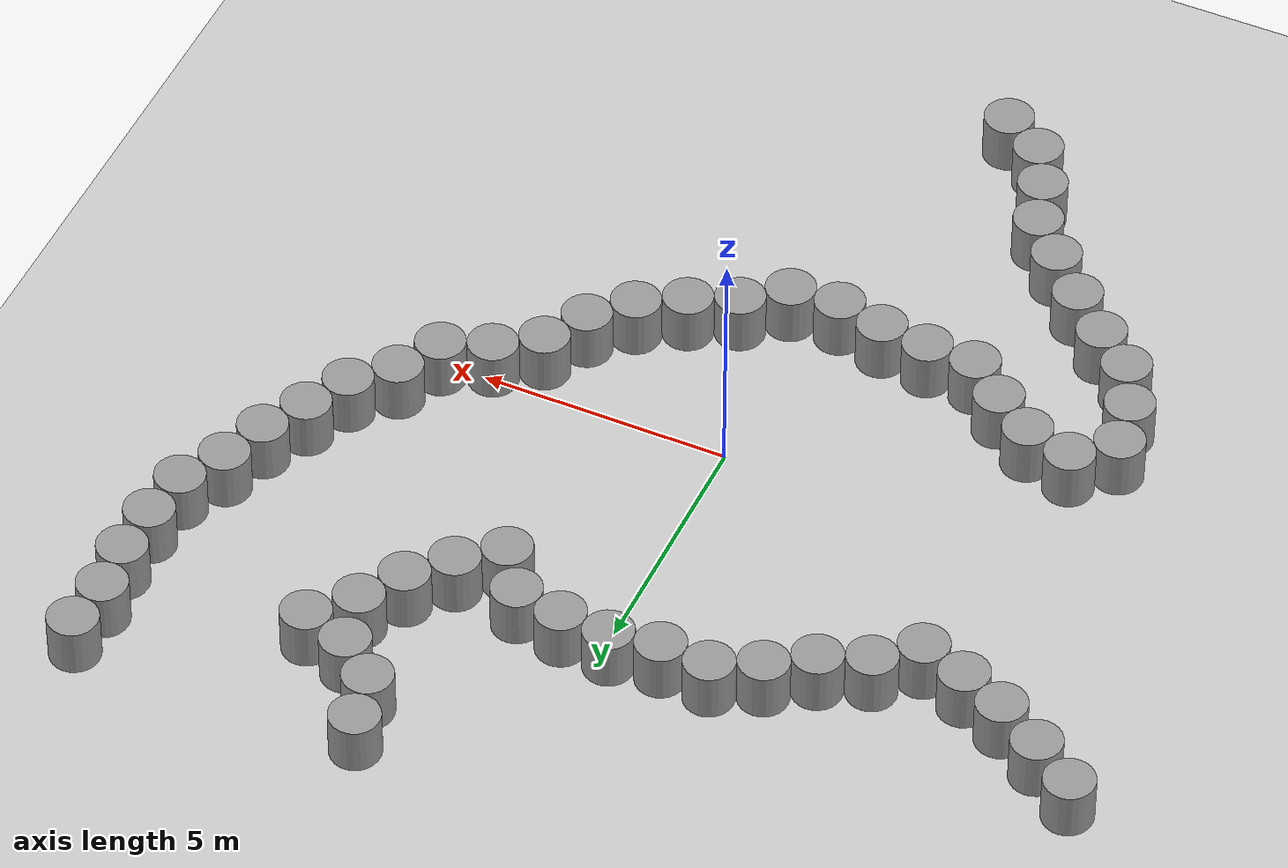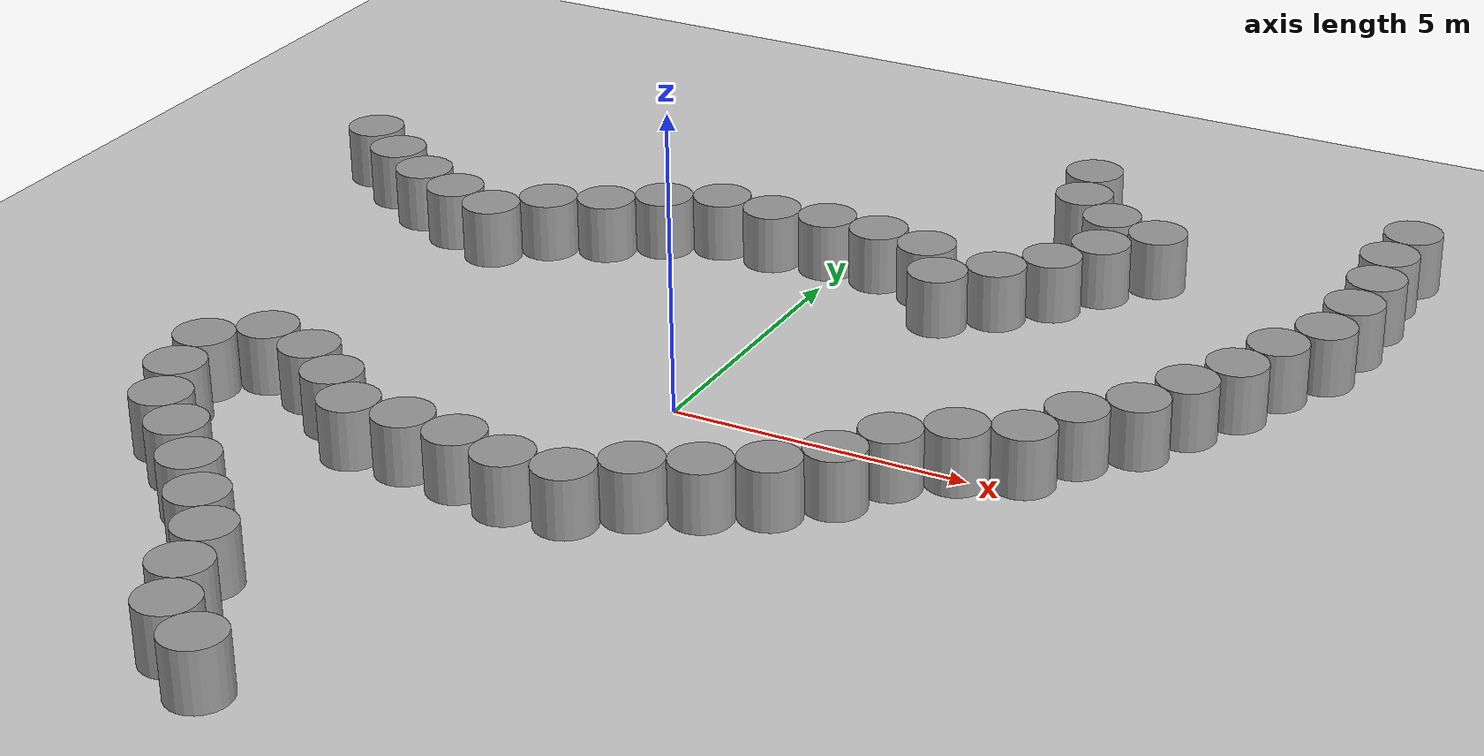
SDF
<sdf version="1.7">
 <world name="default">
  <light name="sun" type="directional">
   <pose>0 0 10 0 -0 0</pose>
   <diffuse>0.8 0.8 0.8 1</diffuse>
   <specular>0.2 0.2 0.2 1</specular>
   <attenuation>
    <range>1000</range>
    <constant>0.9</constant>
    <linear>0.01</linear>
    <quadratic>0.001</quadratic>
   </attenuation>
   <direction>-0.5 0.1 -0.9</direction>
   <spot><inner_angle>0</inner_angle><outer_angle>0</outer_angle><falloff>0</falloff></spot>
  </light>
  <model name="ground_plane">
   <static>1</static>
   <link name="link">
    <collision name="collision">
     <geometry><plane><normal>0 0 1</normal><size>100 100</size></plane></geometry>
     <surface>
      <contact><collide_bitmask>65535</collide_bitmask></contact>
      <friction><ode><mu>100</mu><mu2>50</mu2></ode></friction>
     </surface>
    </collision>
    <visual name="visual">
     <cast_shadows>0</cast_shadows>
     <geometry><plane><normal>0 0 1</normal><size>100 100</size></plane></geometry>
     <material>
      <script><uri>file://media/materials/scripts/gazebo.material</uri><name>Gazebo/Grey</name></script>
     </material>
    </visual>
   </link>
  </model>
  <gravity>0 0 -9.8</gravity>
  <magnetic_field>6e-06 2.3e-05 -4.2e-05</magnetic_field>
  <atmosphere type="adiabatic"/>
  <physics type="ode">
   <max_step_size>0.001</max_step_size>
   <real_time_factor>1</real_time_factor>
   <real_time_update_rate>1000</real_time_update_rate>
  </physics>
  <scene><ambient>0.4 0.4 0.4 1</ambient><background>0.7 0.7 0.7 1</background><shadows>1</shadows></scene>
  <spherical_coordinates>
   <surface_model>EARTH_WGS84</surface_model>
   <latitude_deg>0</latitude_deg>
   <longitude_deg>0</longitude_deg>
   <elevation>0</elevation>
   <heading_deg>0</heading_deg>
  </spherical_coordinates>
  <model name="unit_cylinder">
   <pose>-4.88523 4.31686 0.499991 -0 -0 -0.014173</pose>
   <link name="link">
    <inertial>
     <mass>1</mass>
     <inertia><ixx>0.145833</ixx><ixy>0</ixy><ixz>0</ixz><iyy>0.145833</iyy><iyz>0</iyz><izz>0.125</izz></inertia>
    </inertial>
    <collision name="collision">
     <geometry><cylinder><radius>0.5</radius><length>1</length></cylinder></geometry>
    </collision>
    <visual name="visual">
     <geometry><cylinder><radius>0.5</radius><length>1</length></cylinder></geometry>
     <material>
      <script><name>Gazebo/Grey</name><uri>file://media/materials/scripts/gazebo.material</uri></script>
     </material>
    </visual>
   </link>
  </model>
  <model name="unit_cylinder_0">
   <pose>-3.96455 4.70719 0.499996 -3e-06 2e-06 -0.019339</pose>
   <link name="link">
    <inertial>
     <mass>1</mass>
     <inertia><ixx>0.145833</ixx><ixy>0</ixy><ixz>0</ixz><iyy>0.145833</iyy><iyz>0</iyz><izz>0.125</izz></inertia>
    </inertial>
    <collision name="collision">
     <geometry><cylinder><radius>0.5</radius><length>1</length></cylinder></geometry>
    </collision>
    <visual name="visual">
     <geometry><cylinder><radius>0.5</radius><length>1</length></cylinder></geometry>
     <material>
      <script><name>Gazebo/Grey</name><uri>file://media/materials/scripts/gazebo.material</uri></script>
     </material>
    </visual>
   </link>
  </model>
  <model name="unit_cylinder_1">
   <pose>-5.62469 3.64354 0.499997 3e-06 2e-06 0.000587</pose>
   <link name="link">
    <inertial>
     <mass>1</mass>
     <inertia><ixx>0.145833</ixx><ixy>0</ixy><ixz>0</ixz><iyy>0.145833</iyy><iyz>0</iyz><izz>0.125</izz></inertia>
    </inertial>
    <collision name="collision">
     <geometry><cylinder><radius>0.5</radius><length>1</length></cylinder></geometry>
    </collision>
    <visual name="visual">
     <geometry><cylinder><radius>0.5</radius><length>1</length></cylinder></geometry>
     <material>
      <script><name>Gazebo/Grey</name><uri>file://media/materials/scripts/gazebo.material</uri></script>
     </material>
    </visual>
   </link>
  </model>
  <model name="unit_cylinder_2">
   <pose>-3.13431 5.26469 0.5 0 0 -0.003335</pose>
   <link name="link">
    <inertial>
     <mass>1</mass>
     <inertia><ixx>0.145833</ixx><ixy>0</ixy><ixz>0</ixz><iyy>0.145833</iyy><iyz>0</iyz><izz>0.125</izz></inertia>
    </inertial>
    <collision name="collision">
     <geometry><cylinder><radius>0.5</radius><length>1</length></cylinder></geometry>
    </collision>
    <visual name="visual">
     <geometry><cylinder><radius>0.5</radius><length>1</length></cylinder></geometry>
     <material>
      <script><name>Gazebo/Grey</name><uri>file://media/materials/scripts/gazebo.material</uri></script>
     </material>
    </visual>
   </link>
  </model>
  <model name="unit_cylinder_3">
   <pose>-2.22642 5.68397 0.499998 3e-06 -2e-06 -0.003482</pose>
   <link name="link">
    <inertial>
     <mass>1</mass>
     <inertia><ixx>0.145833</ixx><ixy>0</ixy><ixz>0</ixz><iyy>0.145833</iyy><iyz>0</iyz><izz>0.125</izz></inertia>
    </inertial>
    <collision name="collision">
     <geometry><cylinder><radius>0.5</radius><length>1</length></cylinder></geometry>
    </collision>
    <visual name="visual">
     <geometry><cylinder><radius>0.5</radius><length>1</length></cylinder></geometry>
     <material>
      <script><name>Gazebo/Grey</name><uri>file://media/materials/scripts/gazebo.material</uri></script>
     </material>
    </visual>
   </link>
  </model>
  <model name="unit_cylinder_4">
   <pose>-1.22772 5.628 0.499988 2e-06 1e-06 0.005303</pose>
   <link name="link">
    <inertial>
     <mass>1</mass>
     <inertia><ixx>0.145833</ixx><ixy>0</ixy><ixz>0</ixz><iyy>0.145833</iyy><iyz>0</iyz><izz>0.125</izz></inertia>
    </inertial>
    <collision name="collision">
     <geometry><cylinder><radius>0.5</radius><length>1</length></cylinder></geometry>
    </collision>
    <visual name="visual">
     <geometry><cylinder><radius>0.5</radius><length>1</length></cylinder></geometry>
     <material>
      <script><name>Gazebo/Grey</name><uri>file://media/materials/scripts/gazebo.material</uri></script>
     </material>
    </visual>
   </link>
  </model>
  <model name="unit_cylinder_5">
   <pose>-0.236847 5.76278 0.499942 0 0 -0.015439</pose>
   <link name="link">
    <inertial>
     <mass>1</mass>
     <inertia><ixx>0.145833</ixx><ixy>0</ixy><ixz>0</ixz><iyy>0.145833</iyy><iyz>0</iyz><izz>0.125</izz></inertia>
    </inertial>
    <collision name="collision">
     <geometry><cylinder><radius>0.5</radius><length>1</length></cylinder></geometry>
    </collision>
    <visual name="visual">
     <geometry><cylinder><radius>0.5</radius><length>1</length></cylinder></geometry>
     <material>
      <script><name>Gazebo/Grey</name><uri>file://media/materials/scripts/gazebo.material</uri></script>
     </material>
    </visual>
   </link>
  </model>
  <model name="unit_cylinder_6">
   <pose>0.761152 5.69955 0.499997 3e-06 -6e-06 -0.019067</pose>
   <link name="link">
    <inertial>
     <mass>1</mass>
     <inertia><ixx>0.145833</ixx><ixy>0</ixy><ixz>0</ixz><iyy>0.145833</iyy><iyz>0</iyz><izz>0.125</izz></inertia>
    </inertial>
    <collision name="collision">
     <geometry><cylinder><radius>0.5</radius><length>1</length></cylinder></geometry>
    </collision>
    <visual name="visual">
     <geometry><cylinder><radius>0.5</radius><length>1</length></cylinder></geometry>
     <material>
      <script><name>Gazebo/Grey</name><uri>file://media/materials/scripts/gazebo.material</uri></script>
     </material>
    </visual>
   </link>
  </model>
  <model name="unit_cylinder_7">
   <pose>1.74327 5.51128 0.499993 -3e-06 2e-06 -0.000502</pose>
   <link name="link">
    <inertial>
     <mass>1</mass>
     <inertia><ixx>0.145833</ixx><ixy>0</ixy><ixz>0</ixz><iyy>0.145833</iyy><iyz>0</iyz><izz>0.125</izz></inertia>
    </inertial>
    <collision name="collision">
     <geometry><cylinder><radius>0.5</radius><length>1</length></cylinder></geometry>
    </collision>
    <visual name="visual">
     <geometry><cylinder><radius>0.5</radius><length>1</length></cylinder></geometry>
     <material>
      <script><name>Gazebo/Grey</name><uri>file://media/materials/scripts/gazebo.material</uri></script>
     </material>
    </visual>
   </link>
  </model>
  <model name="unit_cylinder_8">
   <pose>2.34419 4.63769 0.499998 4e-06 3e-06 0.013876</pose>
   <link name="link">
    <inertial>
     <mass>1</mass>
     <inertia><ixx>0.145833</ixx><ixy>0</ixy><ixz>0</ixz><iyy>0.145833</iyy><iyz>0</iyz><izz>0.125</izz></inertia>
    </inertial>
    <collision name="collision">
     <geometry><cylinder><radius>0.5</radius><length>1</length></cylinder></geometry>
    </collision>
    <visual name="visual">
     <geometry><cylinder><radius>0.5</radius><length>1</length></cylinder></geometry>
     <material>
      <script><name>Gazebo/Grey</name><uri>file://media/materials/scripts/gazebo.material</uri></script>
     </material>
    </visual>
   </link>
  </model>
  <model name="unit_cylinder_9">
   <pose>-4.41927 -2.79891 0.499992 -3e-06 -3e-06 0.022525</pose>
   <link name="link">
    <inertial>
     <mass>1</mass>
     <inertia><ixx>0.145833</ixx><ixy>0</ixy><ixz>0</ixz><iyy>0.145833</iyy><iyz>0</iyz><izz>0.125</izz></inertia>
    </inertial>
    <collision name="collision">
     <geometry><cylinder><radius>0.5</radius><length>1</length></cylinder></geometry>
    </collision>
    <visual name="visual">
     <geometry><cylinder><radius>0.5</radius><length>1</length></cylinder></geometry>
     <material>
      <script><name>Gazebo/Grey</name><uri>file://media/materials/scripts/gazebo.material</uri></script>
     </material>
    </visual>
   </link>
  </model>
  <model name="unit_cylinder_10">
   <pose>-3.66203 -3.45209 0.499994 -4e-06 -3e-06 0.006567</pose>
   <link name="link">
    <inertial>
     <mass>1</mass>
     <inertia><ixx>0.145833</ixx><ixy>0</ixy><ixz>0</ixz><iyy>0.145833</iyy><iyz>0</iyz><izz>0.125</izz></inertia>
    </inertial>
    <collision name="collision">
     <geometry><cylinder><radius>0.5</radius><length>1</length></cylinder></geometry>
    </collision>
    <visual name="visual">
     <geometry><cylinder><radius>0.5</radius><length>1</length></cylinder></geometry>
     <material>
      <script><name>Gazebo/Grey</name><uri>file://media/materials/scripts/gazebo.material</uri></script>
     </material>
    </visual>
   </link>
  </model>
  <model name="unit_cylinder_11">
   <pose>-2.66252 -3.48365 0.5 0 -0 -0.006709</pose>
   <link name="link">
    <inertial>
     <mass>1</mass>
     <inertia><ixx>0.145833</ixx><ixy>0</ixy><ixz>0</ixz><iyy>0.145833</iyy><iyz>0</iyz><izz>0.125</izz></inertia>
    </inertial>
    <collision name="collision">
     <geometry><cylinder><radius>0.5</radius><length>1</length></cylinder></geometry>
    </collision>
    <visual name="visual">
     <geometry><cylinder><radius>0.5</radius><length>1</length></cylinder></geometry>
     <material>
      <script><name>Gazebo/Grey</name><uri>file://media/materials/scripts/gazebo.material</uri></script>
     </material>
    </visual>
   </link>
  </model>
  <model name="unit_cylinder_12">
   <pose>-1.66973 -3.60363 0.499997 4e-06 -2e-06 0.007855</pose>
   <link name="link">
    <inertial>
     <mass>1</mass>
     <inertia><ixx>0.145833</ixx><ixy>0</ixy><ixz>0</ixz><iyy>0.145833</iyy><iyz>0</iyz><izz>0.125</izz></inertia>
    </inertial>
    <collision name="collision">
     <geometry><cylinder><radius>0.5</radius><length>1</length></cylinder></geometry>
    </collision>
    <visual name="visual">
     <geometry><cylinder><radius>0.5</radius><length>1</length></cylinder></geometry>
     <material>
      <script><name>Gazebo/Grey</name><uri>file://media/materials/scripts/gazebo.material</uri></script>
     </material>
    </visual>
   </link>
  </model>
  <model name="unit_cylinder_13">
   <pose>-0.695289 -3.82938 0.499993 -3e-06 2e-06 0.010551</pose>
   <link name="link">
    <inertial>
     <mass>1</mass>
     <inertia><ixx>0.145833</ixx><ixy>0</ixy><ixz>0</ixz><iyy>0.145833</iyy><iyz>0</iyz><izz>0.125</izz></inertia>
    </inertial>
    <collision name="collision">
     <geometry><cylinder><radius>0.5</radius><length>1</length></cylinder></geometry>
    </collision>
    <visual name="visual">
     <geometry><cylinder><radius>0.5</radius><length>1</length></cylinder></geometry>
     <material>
      <script><name>Gazebo/Grey</name><uri>file://media/materials/scripts/gazebo.material</uri></script>
     </material>
    </visual>
   </link>
  </model>
  <model name="unit_cylinder_14">
   <pose>0.303372 -3.77377 0.499993 -3e-06 3e-06 0.002691</pose>
   <link name="link">
    <inertial>
     <mass>1</mass>
     <inertia><ixx>0.145833</ixx><ixy>0</ixy><ixz>0</ixz><iyy>0.145833</iyy><iyz>0</iyz><izz>0.125</izz></inertia>
    </inertial>
    <collision name="collision">
     <geometry><cylinder><radius>0.5</radius><length>1</length></cylinder></geometry>
    </collision>
    <visual name="visual">
     <geometry><cylinder><radius>0.5</radius><length>1</length></cylinder></geometry>
     <material>
      <script><name>Gazebo/Grey</name><uri>file://media/materials/scripts/gazebo.material</uri></script>
     </material>
    </visual>
   </link>
  </model>
  <model name="unit_cylinder_15">
   <pose>1.08261 -3.14695 0.499997 4e-06 3e-06 0.004034</pose>
   <link name="link">
    <inertial>
     <mass>1</mass>
     <inertia><ixx>0.145833</ixx><ixy>0</ixy><ixz>0</ixz><iyy>0.145833</iyy><iyz>0</iyz><izz>0.125</izz></inertia>
    </inertial>
    <collision name="collision">
     <geometry><cylinder><radius>0.5</radius><length>1</length></cylinder></geometry>
    </collision>
    <visual name="visual">
     <geometry><cylinder><radius>0.5</radius><length>1</length></cylinder></geometry>
     <material>
      <script><name>Gazebo/Grey</name><uri>file://media/materials/scripts/gazebo.material</uri></script>
     </material>
    </visual>
   </link>
  </model>
  <model name="unit_cylinder_16">
   <pose>1.99143 -2.72719 0.5 0 0 -0.038004</pose>
   <link name="link">
    <inertial>
     <mass>1</mass>
     <inertia><ixx>0.145833</ixx><ixy>0</ixy><ixz>0</ixz><iyy>0.145833</iyy><iyz>0</iyz><izz>0.125</izz></inertia>
    </inertial>
    <collision name="collision">
     <geometry><cylinder><radius>0.5</radius><length>1</length></cylinder></geometry>
    </collision>
    <visual name="visual">
     <geometry><cylinder><radius>0.5</radius><length>1</length></cylinder></geometry>
     <material>
      <script><name>Gazebo/Grey</name><uri>file://media/materials/scripts/gazebo.material</uri></script>
     </material>
    </visual>
   </link>
  </model>
  <model name="unit_cylinder_17">
   <pose>2.85703 -2.22312 0.499991 -0 -0 -0.003557</pose>
   <link name="link">
    <inertial>
     <mass>1</mass>
     <inertia><ixx>0.145833</ixx><ixy>0</ixy><ixz>0</ixz><iyy>0.145833</iyy><iyz>0</iyz><izz>0.125</izz></inertia>
    </inertial>
    <collision name="collision">
     <geometry><cylinder><radius>0.5</radius><length>1</length></cylinder></geometry>
    </collision>
    <visual name="visual">
     <geometry><cylinder><radius>0.5</radius><length>1</length></cylinder></geometry>
     <material>
      <script><name>Gazebo/Grey</name><uri>file://media/materials/scripts/gazebo.material</uri></script>
     </material>
    </visual>
   </link>
  </model>
  <model name="unit_cylinder_18">
   <pose>-5.24293 -2.23182 0.5 0 -0 0.018738</pose>
   <link name="link">
    <inertial>
     <mass>1</mass>
     <inertia><ixx>0.145833</ixx><ixy>0</ixy><ixz>0</ixz><iyy>0.145833</iyy><iyz>0</iyz><izz>0.125</izz></inertia>
    </inertial>
    <collision name="collision">
     <geometry><cylinder><radius>0.5</radius><length>1</length></cylinder></geometry>
    </collision>
    <visual name="visual">
     <geometry><cylinder><radius>0.5</radius><length>1</length></cylinder></geometry>
     <material>
      <script><name>Gazebo/Grey</name><uri>file://media/materials/scripts/gazebo.material</uri></script>
     </material>
    </visual>
   </link>
  </model>
  <model name="unit_cylinder_19">
   <pose>3.56408 -1.5145 0.499992 -3e-06 -4e-06 -0.014137</pose>
   <link name="link">
    <inertial>
     <mass>1</mass>
     <inertia><ixx>0.145833</ixx><ixy>0</ixy><ixz>0</ixz><iyy>0.145833</iyy><iyz>0</iyz><izz>0.125</izz></inertia>
    </inertial>
    <collision name="collision">
     <geometry><cylinder><radius>0.5</radius><length>1</length></cylinder></geometry>
    </collision>
    <visual name="visual">
     <geometry><cylinder><radius>0.5</radius><length>1</length></cylinder></geometry>
     <material>
      <script><name>Gazebo/Grey</name><uri>file://media/materials/scripts/gazebo.material</uri></script>
     </material>
    </visual>
   </link>
  </model>
  <model name="unit_cylinder_20">
   <pose>3.12043 5.26812 0.499997 3e-06 -3e-06 -0.002531</pose>
   <link name="link">
    <inertial>
     <mass>1</mass>
     <inertia><ixx>0.145833</ixx><ixy>0</ixy><ixz>0</ixz><iyy>0.145833</iyy><iyz>0</iyz><izz>0.125</izz></inertia>
    </inertial>
    <collision name="collision">
     <geometry><cylinder><radius>0.5</radius><length>1</length></cylinder></geometry>
    </collision>
    <visual name="visual">
     <geometry><cylinder><radius>0.5</radius><length>1</length></cylinder></geometry>
     <material>
      <script><name>Gazebo/Grey</name><uri>file://media/materials/scripts/gazebo.material</uri></script>
     </material>
    </visual>
   </link>
  </model>
  <model name="unit_cylinder_21">
   <pose>3.80101 6.00102 0.499994 -3e-06 -2e-06 0.016279</pose>
   <link name="link">
    <inertial>
     <mass>1</mass>
     <inertia><ixx>0.145833</ixx><ixy>0</ixy><ixz>0</ixz><iyy>0.145833</iyy><iyz>0</iyz><izz>0.125</izz></inertia>
    </inertial>
    <collision name="collision">
     <geometry><cylinder><radius>0.5</radius><length>1</length></cylinder></geometry>
    </collision>
    <visual name="visual">
     <geometry><cylinder><radius>0.5</radius><length>1</length></cylinder></geometry>
     <material>
      <script><name>Gazebo/Grey</name><uri>file://media/materials/scripts/gazebo.material</uri></script>
     </material>
    </visual>
   </link>
  </model>
  <model name="unit_cylinder_22">
   <pose>4.32045 6.85553 0.5 0 -0 0.00669</pose>
   <link name="link">
    <inertial>
     <mass>1</mass>
     <inertia><ixx>0.145833</ixx><ixy>0</ixy><ixz>0</ixz><iyy>0.145833</iyy><iyz>0</iyz><izz>0.125</izz></inertia>
    </inertial>
    <collision name="collision">
     <geometry><cylinder><radius>0.5</radius><length>1</length></cylinder></geometry>
    </collision>
    <visual name="visual">
     <geometry><cylinder><radius>0.5</radius><length>1</length></cylinder></geometry>
     <material>
      <script><name>Gazebo/Grey</name><uri>file://media/materials/scripts/gazebo.material</uri></script>
     </material>
    </visual>
   </link>
  </model>
  <model name="unit_cylinder_23">
   <pose>4.04269 -0.635459 0.499997 3e-06 2e-06 -0.096247</pose>
   <link name="link">
    <inertial>
     <mass>1</mass>
     <inertia><ixx>0.145833</ixx><ixy>0</ixy><ixz>0</ixz><iyy>0.145833</iyy><iyz>0</iyz><izz>0.125</izz></inertia>
    </inertial>
    <collision name="collision">
     <geometry><cylinder><radius>0.5</radius><length>1</length></cylinder></geometry>
    </collision>
    <visual name="visual">
     <geometry><cylinder><radius>0.5</radius><length>1</length></cylinder></geometry>
     <material>
      <script><name>Gazebo/Grey</name><uri>file://media/materials/scripts/gazebo.material</uri></script>
     </material>
    </visual>
   </link>
  </model>
  <model name="unit_cylinder_24">
   <pose>4.85439 -0.048985 0.499997 3e-06 2e-06 -0.010776</pose>
   <link name="link">
    <inertial>
     <mass>1</mass>
     <inertia><ixx>0.145833</ixx><ixy>0</ixy><ixz>0</ixz><iyy>0.145833</iyy><iyz>0</iyz><izz>0.125</izz></inertia>
    </inertial>
    <collision name="collision">
     <geometry><cylinder><radius>0.5</radius><length>1</length></cylinder></geometry>
    </collision>
    <visual name="visual">
     <geometry><cylinder><radius>0.5</radius><length>1</length></cylinder></geometry>
     <material>
      <script><name>Gazebo/Grey</name><uri>file://media/materials/scripts/gazebo.material</uri></script>
     </material>
    </visual>
   </link>
  </model>
  <model name="unit_cylinder_25">
   <pose>5.77753 0.339701 0.499991 0 0 -0.045357</pose>
   <link name="link">
    <inertial>
     <mass>1</mass>
     <inertia><ixx>0.145833</ixx><ixy>0</ixy><ixz>0</ixz><iyy>0.145833</iyy><iyz>0</iyz><izz>0.125</izz></inertia>
    </inertial>
    <collision name="collision">
     <geometry><cylinder><radius>0.5</radius><length>1</length></cylinder></geometry>
    </collision>
    <visual name="visual">
     <geometry><cylinder><radius>0.5</radius><length>1</length></cylinder></geometry>
     <material>
      <script><name>Gazebo/Grey</name><uri>file://media/materials/scripts/gazebo.material</uri></script>
     </material>
    </visual>
   </link>
  </model>
  <model name="unit_cylinder_26">
   <pose>6.24251 1.22842 0.499993 -3e-06 2e-06 0.074308</pose>
   <link name="link">
    <inertial>
     <mass>1</mass>
     <inertia><ixx>0.145833</ixx><ixy>0</ixy><ixz>0</ixz><iyy>0.145833</iyy><iyz>0</iyz><izz>0.125</izz></inertia>
    </inertial>
    <collision name="collision">
     <geometry><cylinder><radius>0.5</radius><length>1</length></cylinder></geometry>
    </collision>
    <visual name="visual">
     <geometry><cylinder><radius>0.5</radius><length>1</length></cylinder></geometry>
     <material>
      <script><name>Gazebo/Grey</name><uri>file://media/materials/scripts/gazebo.material</uri></script>
     </material>
    </visual>
   </link>
  </model>
  <model name="unit_cylinder_27">
   <pose>6.95342 1.93176 0.499999 -1e-06 -0 0.01408</pose>
   <link name="link">
    <inertial>
     <mass>1</mass>
     <inertia><ixx>0.145833</ixx><ixy>0</ixy><ixz>0</ixz><iyy>0.145833</iyy><iyz>0</iyz><izz>0.125</izz></inertia>
    </inertial>
    <collision name="collision">
     <geometry><cylinder><radius>0.5</radius><length>1</length></cylinder></geometry>
    </collision>
    <visual name="visual">
     <geometry><cylinder><radius>0.5</radius><length>1</length></cylinder></geometry>
     <material>
      <script><name>Gazebo/Grey</name><uri>file://media/materials/scripts/gazebo.material</uri></script>
     </material>
    </visual>
   </link>
  </model>
  <model name="unit_cylinder_28">
   <pose>7.39506 2.82895 0.5 0 0 -0.055246</pose>
   <link name="link">
    <inertial>
     <mass>1</mass>
     <inertia><ixx>0.145833</ixx><ixy>0</ixy><ixz>0</ixz><iyy>0.145833</iyy><iyz>0</iyz><izz>0.125</izz></inertia>
    </inertial>
    <collision name="collision">
     <geometry><cylinder><radius>0.5</radius><length>1</length></cylinder></geometry>
    </collision>
    <visual name="visual">
     <geometry><cylinder><radius>0.5</radius><length>1</length></cylinder></geometry>
     <material>
      <script><name>Gazebo/Grey</name><uri>file://media/materials/scripts/gazebo.material</uri></script>
     </material>
    </visual>
   </link>
  </model>
  <model name="unit_cylinder_29">
   <pose>5.02827 7.63205 0.499997 3e-06 2e-06 0.020177</pose>
   <link name="link">
    <inertial>
     <mass>1</mass>
     <inertia><ixx>0.145833</ixx><ixy>0</ixy><ixz>0</ixz><iyy>0.145833</iyy><iyz>0</iyz><izz>0.125</izz></inertia>
    </inertial>
    <collision name="collision">
     <geometry><cylinder><radius>0.5</radius><length>1</length></cylinder></geometry>
    </collision>
    <visual name="visual">
     <geometry><cylinder><radius>0.5</radius><length>1</length></cylinder></geometry>
     <material>
      <script><name>Gazebo/Grey</name><uri>file://media/materials/scripts/gazebo.material</uri></script>
     </material>
    </visual>
   </link>
  </model>
  <model name="unit_cylinder_30">
   <pose>7.87509 3.7062 0.5 0 -0 0.043578</pose>
   <link name="link">
    <inertial>
     <mass>1</mass>
     <inertia><ixx>0.145833</ixx><ixy>0</ixy><ixz>0</ixz><iyy>0.145833</iyy><iyz>0</iyz><izz>0.125</izz></inertia>
    </inertial>
    <collision name="collision">
     <geometry><cylinder><radius>0.5</radius><length>1</length></cylinder></geometry>
    </collision>
    <visual name="visual">
     <geometry><cylinder><radius>0.5</radius><length>1</length></cylinder></geometry>
     <material>
      <script><name>Gazebo/Grey</name><uri>file://media/materials/scripts/gazebo.material</uri></script>
     </material>
    </visual>
   </link>
  </model>
  <model name="unit_cylinder_31">
   <pose>8.20358 4.65072 0.499996 4e-06 3e-06 0.022974</pose>
   <link name="link">
    <inertial>
     <mass>1</mass>
     <inertia><ixx>0.145833</ixx><ixy>0</ixy><ixz>0</ixz><iyy>0.145833</iyy><iyz>0</iyz><izz>0.125</izz></inertia>
    </inertial>
    <collision name="collision">
     <geometry><cylinder><radius>0.5</radius><length>1</length></cylinder></geometry>
    </collision>
    <visual name="visual">
     <geometry><cylinder><radius>0.5</radius><length>1</length></cylinder></geometry>
     <material>
      <script><name>Gazebo/Grey</name><uri>file://media/materials/scripts/gazebo.material</uri></script>
     </material>
    </visual>
   </link>
  </model>
  <model name="unit_cylinder_32">
   <pose>4.07546 7.93924 0.5 0 -0 0.036909</pose>
   <link name="link">
    <inertial>
     <mass>1</mass>
     <inertia><ixx>0.145833</ixx><ixy>0</ixy><ixz>0</ixz><iyy>0.145833</iyy><iyz>0</iyz><izz>0.125</izz></inertia>
    </inertial>
    <collision name="collision">
     <geometry><cylinder><radius>0.5</radius><length>1</length></cylinder></geometry>
    </collision>
    <visual name="visual">
     <geometry><cylinder><radius>0.5</radius><length>1</length></cylinder></geometry>
     <material>
      <script><name>Gazebo/Grey</name><uri>file://media/materials/scripts/gazebo.material</uri></script>
     </material>
    </visual>
   </link>
  </model>
  <model name="unit_cylinder_33">
   <pose>8.69174 5.53135 0.500438 0.000414 0.000779 0.010944</pose>
   <link name="link">
    <inertial>
     <mass>1</mass>
     <inertia><ixx>0.145833</ixx><ixy>0</ixy><ixz>0</ixz><iyy>0.145833</iyy><iyz>0</iyz><izz>0.125</izz></inertia>
    </inertial>
    <collision name="collision">
     <geometry><cylinder><radius>0.5</radius><length>1</length></cylinder></geometry>
    </collision>
    <visual name="visual">
     <geometry><cylinder><radius>0.5</radius><length>1</length></cylinder></geometry>
     <material>
      <script><name>Gazebo/Grey</name><uri>file://media/materials/scripts/gazebo.material</uri></script>
     </material>
    </visual>
   </link>
  </model>
  <model name="unit_cylinder_34">
   <pose>8.82112 6.5438 0.502966 -0.005752 -0.001528 0.299621</pose>
   <link name="link">
    <inertial>
     <mass>1</mass>
     <inertia><ixx>0.145833</ixx><ixy>0</ixy><ixz>0</ixz><iyy>0.145833</iyy><iyz>0</iyz><izz>0.125</izz></inertia>
    </inertial>
    <collision name="collision">
     <geometry><cylinder><radius>0.5</radius><length>1</length></cylinder></geometry>
    </collision>
    <visual name="visual">
     <geometry><cylinder><radius>0.5</radius><length>1</length></cylinder></geometry>
     <material>
      <script><name>Gazebo/Grey</name><uri>file://media/materials/scripts/gazebo.material</uri></script>
     </material>
    </visual>
   </link>
  </model>
  <model name="unit_cylinder_35">
   <pose>8.8547 7.57575 0.499998 3e-06 -2e-06 -0.011026</pose>
   <link name="link">
    <inertial>
     <mass>1</mass>
     <inertia><ixx>0.145833</ixx><ixy>0</ixy><ixz>0</ixz><iyy>0.145833</iyy><iyz>0</iyz><izz>0.125</izz></inertia>
    </inertial>
    <collision name="collision">
     <geometry><cylinder><radius>0.5</radius><length>1</length></cylinder></geometry>
    </collision>
    <visual name="visual">
     <geometry><cylinder><radius>0.5</radius><length>1</length></cylinder></geometry>
     <material>
      <script><name>Gazebo/Grey</name><uri>file://media/materials/scripts/gazebo.material</uri></script>
     </material>
    </visual>
   </link>
  </model>
  <model name="unit_cylinder_36">
   <pose>8.75882 8.57119 0.499991 0 -0 0.004839</pose>
   <link name="link">
    <inertial>
     <mass>1</mass>
     <inertia><ixx>0.145833</ixx><ixy>0</ixy><ixz>0</ixz><iyy>0.145833</iyy><iyz>0</iyz><izz>0.125</izz></inertia>
    </inertial>
    <collision name="collision">
     <geometry><cylinder><radius>0.5</radius><length>1</length></cylinder></geometry>
    </collision>
    <visual name="visual">
     <geometry><cylinder><radius>0.5</radius><length>1</length></cylinder></geometry>
     <material>
      <script><name>Gazebo/Grey</name><uri>file://media/materials/scripts/gazebo.material</uri></script>
     </material>
    </visual>
   </link>
  </model>
  <model name="unit_cylinder_37">
   <pose>8.84994 9.56705 0.499996 -4e-06 2e-06 0.005227</pose>
   <link name="link">
    <inertial>
     <mass>1</mass>
     <inertia><ixx>0.145833</ixx><ixy>0</ixy><ixz>0</ixz><iyy>0.145833</iyy><iyz>0</iyz><izz>0.125</izz></inertia>
    </inertial>
    <collision name="collision">
     <geometry><cylinder><radius>0.5</radius><length>1</length></cylinder></geometry>
    </collision>
    <visual name="visual">
     <geometry><cylinder><radius>0.5</radius><length>1</length></cylinder></geometry>
     <material>
      <script><name>Gazebo/Grey</name><uri>file://media/materials/scripts/gazebo.material</uri></script>
     </material>
    </visual>
   </link>
  </model>
  <model name="unit_cylinder_38">
   <pose>3.30375 8.58356 0.499997 3e-06 3e-06 -0.057543</pose>
   <link name="link">
    <inertial>
     <mass>1</mass>
     <inertia><ixx>0.145833</ixx><ixy>0</ixy><ixz>0</ixz><iyy>0.145833</iyy><iyz>0</iyz><izz>0.125</izz></inertia>
    </inertial>
    <collision name="collision">
     <geometry><cylinder><radius>0.5</radius><length>1</length></cylinder></geometry>
    </collision>
    <visual name="visual">
     <geometry><cylinder><radius>0.5</radius><length>1</length></cylinder></geometry>
     <material>
      <script><name>Gazebo/Grey</name><uri>file://media/materials/scripts/gazebo.material</uri></script>
     </material>
    </visual>
   </link>
  </model>
  <model name="unit_cylinder_39">
   <pose>3.09132 9.56789 0.502316 0.001477 -0.004404 -0.129825</pose>
   <link name="link">
    <inertial>
     <mass>1</mass>
     <inertia><ixx>0.145833</ixx><ixy>0</ixy><ixz>0</ixz><iyy>0.145833</iyy><iyz>0</iyz><izz>0.125</izz></inertia>
    </inertial>
    <collision name="collision">
     <geometry><cylinder><radius>0.5</radius><length>1</length></cylinder></geometry>
    </collision>
    <visual name="visual">
     <geometry><cylinder><radius>0.5</radius><length>1</length></cylinder></geometry>
     <material>
      <script><name>Gazebo/Grey</name><uri>file://media/materials/scripts/gazebo.material</uri></script>
     </material>
    </visual>
   </link>
  </model>
  <model name="unit_cylinder_40">
   <pose>-6.5666 3.97945 0.499993 -3e-06 -2e-06 -0.001415</pose>
   <link name="link">
    <inertial>
     <mass>1</mass>
     <inertia><ixx>0.145833</ixx><ixy>0</ixy><ixz>0</ixz><iyy>0.145833</iyy><iyz>0</iyz><izz>0.125</izz></inertia>
    </inertial>
    <collision name="collision">
     <geometry><cylinder><radius>0.5</radius><length>1</length></cylinder></geometry>
    </collision>
    <visual name="visual">
     <geometry><cylinder><radius>0.5</radius><length>1</length></cylinder></geometry>
     <material>
      <script><name>Gazebo/Grey</name><uri>file://media/materials/scripts/gazebo.material</uri></script>
     </material>
    </visual>
   </link>
  </model>
  <model name="unit_cylinder_41">
   <pose>-7.47819 4.3906 0.499998 3e-06 -2e-06 0.001421</pose>
   <link name="link">
    <inertial>
     <mass>1</mass>
     <inertia><ixx>0.145833</ixx><ixy>0</ixy><ixz>0</ixz><iyy>0.145833</iyy><iyz>0</iyz><izz>0.125</izz></inertia>
    </inertial>
    <collision name="collision">
     <geometry><cylinder><radius>0.5</radius><length>1</length></cylinder></geometry>
    </collision>
    <visual name="visual">
     <geometry><cylinder><radius>0.5</radius><length>1</length></cylinder></geometry>
     <material>
      <script><name>Gazebo/Grey</name><uri>file://media/materials/scripts/gazebo.material</uri></script>
     </material>
    </visual>
   </link>
  </model>
  <model name="unit_cylinder_42">
   <pose>-8.40516 4.96655 0.499992 -3e-06 3e-06 0</pose>
   <link name="link">
    <inertial>
     <mass>1</mass>
     <inertia><ixx>0.145833</ixx><ixy>0</ixy><ixz>0</ixz><iyy>0.145833</iyy><iyz>0</iyz><izz>0.125</izz></inertia>
    </inertial>
    <collision name="collision">
     <geometry><cylinder><radius>0.5</radius><length>1</length></cylinder></geometry>
    </collision>
    <visual name="visual">
     <geometry><cylinder><radius>0.5</radius><length>1</length></cylinder></geometry>
     <material>
      <script><name>Gazebo/Grey</name><uri>file://media/materials/scripts/gazebo.material</uri></script>
     </material>
    </visual>
   </link>
  </model>
  <model name="unit_cylinder_43">
   <pose>-9.30017 5.5931 0.499992 -3e-06 3e-06 0</pose>
   <link name="link">
    <inertial>
     <mass>1</mass>
     <inertia><ixx>0.145833</ixx><ixy>0</ixy><ixz>0</ixz><iyy>0.145833</iyy><iyz>0</iyz><izz>0.125</izz></inertia>
    </inertial>
    <collision name="collision">
     <geometry><cylinder><radius>0.5</radius><length>1</length></cylinder></geometry>
    </collision>
    <visual name="visual">
     <geometry><cylinder><radius>0.5</radius><length>1</length></cylinder></geometry>
     <material>
      <script><name>Gazebo/Grey</name><uri>file://media/materials/scripts/gazebo.material</uri></script>
     </material>
    </visual>
   </link>
  </model>
  <model name="unit_cylinder_44">
   <pose>-6.20796 -1.96965 0.5 0 -0 -0.005317</pose>
   <link name="link">
    <inertial>
     <mass>1</mass>
     <inertia><ixx>0.145833</ixx><ixy>0</ixy><ixz>0</ixz><iyy>0.145833</iyy><iyz>0</iyz><izz>0.125</izz></inertia>
    </inertial>
    <collision name="collision">
     <geometry><cylinder><radius>0.5</radius><length>1</length></cylinder></geometry>
    </collision>
    <visual name="visual">
     <geometry><cylinder><radius>0.5</radius><length>1</length></cylinder></geometry>
     <material>
      <script><name>Gazebo/Grey</name><uri>file://media/materials/scripts/gazebo.material</uri></script>
     </material>
    </visual>
   </link>
  </model>
  <model name="unit_cylinder_45">
   <pose>-6.94281 -2.64791 0.5 1e-06 1e-06 -0.000429</pose>
   <link name="link">
    <inertial>
     <mass>1</mass>
     <inertia><ixx>0.145833</ixx><ixy>0</ixy><ixz>0</ixz><iyy>0.145833</iyy><iyz>0</iyz><izz>0.125</izz></inertia>
    </inertial>
    <collision name="collision">
     <geometry><cylinder><radius>0.5</radius><length>1</length></cylinder></geometry>
    </collision>
    <visual name="visual">
     <geometry><cylinder><radius>0.5</radius><length>1</length></cylinder></geometry>
     <material>
      <script><name>Gazebo/Grey</name><uri>file://media/materials/scripts/gazebo.material</uri></script>
     </material>
    </visual>
   </link>
  </model>
  <model name="unit_cylinder_46">
   <pose>-6.7491 -3.62898 0.499991 -1e-06 -1e-06 -0.000792</pose>
   <link name="link">
    <inertial>
     <mass>1</mass>
     <inertia><ixx>0.145833</ixx><ixy>0</ixy><ixz>0</ixz><iyy>0.145833</iyy><iyz>0</iyz><izz>0.125</izz></inertia>
    </inertial>
    <collision name="collision">
     <geometry><cylinder><radius>0.5</radius><length>1</length></cylinder></geometry>
    </collision>
    <visual name="visual">
     <geometry><cylinder><radius>0.5</radius><length>1</length></cylinder></geometry>
     <material>
      <script><name>Gazebo/Grey</name><uri>file://media/materials/scripts/gazebo.material</uri></script>
     </material>
    </visual>
   </link>
  </model>
  <model name="unit_cylinder_47">
   <pose>-6.3089 -4.55952 0.499996 -4e-06 -3e-06 -0.000134</pose>
   <link name="link">
    <inertial>
     <mass>1</mass>
     <inertia><ixx>0.145833</ixx><ixy>0</ixy><ixz>0</ixz><iyy>0.145833</iyy><iyz>0</iyz><izz>0.125</izz></inertia>
    </inertial>
    <collision name="collision">
     <geometry><cylinder><radius>0.5</radius><length>1</length></cylinder></geometry>
    </collision>
    <visual name="visual">
     <geometry><cylinder><radius>0.5</radius><length>1</length></cylinder></geometry>
     <material>
      <script><name>Gazebo/Grey</name><uri>file://media/materials/scripts/gazebo.material</uri></script>
     </material>
    </visual>
   </link>
  </model>
  <model name="unit_cylinder_48">
   <pose>-5.5369 -5.19518 0.499992 -2e-06 -2e-06 -0.000112</pose>
   <link name="link">
    <inertial>
     <mass>1</mass>
     <inertia><ixx>0.145833</ixx><ixy>0</ixy><ixz>0</ixz><iyy>0.145833</iyy><iyz>0</iyz><izz>0.125</izz></inertia>
    </inertial>
    <collision name="collision">
     <geometry><cylinder><radius>0.5</radius><length>1</length></cylinder></geometry>
    </collision>
    <visual name="visual">
     <geometry><cylinder><radius>0.5</radius><length>1</length></cylinder></geometry>
     <material>
      <script><name>Gazebo/Grey</name><uri>file://media/materials/scripts/gazebo.material</uri></script>
     </material>
    </visual>
   </link>
  </model>
  <model name="unit_cylinder_49">
   <pose>-4.7357 -5.95229 0.499992 -3e-06 4e-06 0</pose>
   <link name="link">
    <inertial>
     <mass>1</mass>
     <inertia><ixx>0.145833</ixx><ixy>0</ixy><ixz>0</ixz><iyy>0.145833</iyy><iyz>0</iyz><izz>0.125</izz></inertia>
    </inertial>
    <collision name="collision">
     <geometry><cylinder><radius>0.5</radius><length>1</length></cylinder></geometry>
    </collision>
    <visual name="visual">
     <geometry><cylinder><radius>0.5</radius><length>1</length></cylinder></geometry>
     <material>
      <script><name>Gazebo/Grey</name><uri>file://media/materials/scripts/gazebo.material</uri></script>
     </material>
    </visual>
   </link>
  </model>
  <model name="unit_cylinder_50">
   <pose>-3.96304 -6.77079 0.499994 5e-06 1e-06 -0.002703</pose>
   <link name="link">
    <inertial>
     <mass>1</mass>
     <inertia><ixx>0.145833</ixx><ixy>0</ixy><ixz>0</ixz><iyy>0.145833</iyy><iyz>0</iyz><izz>0.125</izz></inertia>
    </inertial>
    <collision name="collision">
     <geometry><cylinder><radius>0.5</radius><length>1</length></cylinder></geometry>
    </collision>
    <visual name="visual">
     <geometry><cylinder><radius>0.5</radius><length>1</length></cylinder></geometry>
     <material>
      <script><name>Gazebo/Grey</name><uri>file://media/materials/scripts/gazebo.material</uri></script>
     </material>
    </visual>
   </link>
  </model>
  <model name="unit_cylinder_51">
   <pose>-3.2831 -7.50482 0.499994 3e-06 -4e-06 0.038932</pose>
   <link name="link">
    <inertial>
     <mass>1</mass>
     <inertia><ixx>0.145833</ixx><ixy>0</ixy><ixz>0</ixz><iyy>0.145833</iyy><iyz>0</iyz><izz>0.125</izz></inertia>
    </inertial>
    <collision name="collision">
     <geometry><cylinder><radius>0.5</radius><length>1</length></cylinder></geometry>
    </collision>
    <visual name="visual">
     <geometry><cylinder><radius>0.5</radius><length>1</length></cylinder></geometry>
     <material>
      <script><name>Gazebo/Grey</name><uri>file://media/materials/scripts/gazebo.material</uri></script>
     </material>
    </visual>
   </link>
  </model>
  <model name="unit_cylinder_52">
   <pose>-2.97835 -8.45725 0.5 0 0 -0.061848</pose>
   <link name="link">
    <inertial>
     <mass>1</mass>
     <inertia><ixx>0.145833</ixx><ixy>0</ixy><ixz>0</ixz><iyy>0.145833</iyy><iyz>0</iyz><izz>0.125</izz></inertia>
    </inertial>
    <collision name="collision">
     <geometry><cylinder><radius>0.5</radius><length>1</length></cylinder></geometry>
    </collision>
    <visual name="visual">
     <geometry><cylinder><radius>0.5</radius><length>1</length></cylinder></geometry>
     <material>
      <script><name>Gazebo/Grey</name><uri>file://media/materials/scripts/gazebo.material</uri></script>
     </material>
    </visual>
   </link>
  </model>
  <model name="unit_cylinder_53">
   <pose>-2.52079 -9.34646 0.499996 3e-06 3e-06 0.008719</pose>
   <link name="link">
    <inertial>
     <mass>1</mass>
     <inertia><ixx>0.145833</ixx><ixy>0</ixy><ixz>0</ixz><iyy>0.145833</iyy><iyz>0</iyz><izz>0.125</izz></inertia>
    </inertial>
    <collision name="collision">
     <geometry><cylinder><radius>0.5</radius><length>1</length></cylinder></geometry>
    </collision>
    <visual name="visual">
     <geometry><cylinder><radius>0.5</radius><length>1</length></cylinder></geometry>
     <material>
      <script><name>Gazebo/Grey</name><uri>file://media/materials/scripts/gazebo.material</uri></script>
     </material>
    </visual>
   </link>
  </model>
  <model name="unit_cylinder_54">
   <pose>-1.67871 -9.88619 0.499998 3e-06 4e-06 -0.005693</pose>
   <link name="link">
    <inertial>
     <mass>1</mass>
     <inertia><ixx>0.145833</ixx><ixy>0</ixy><ixz>0</ixz><iyy>0.145833</iyy><iyz>0</iyz><izz>0.125</izz></inertia>
    </inertial>
    <collision name="collision">
     <geometry><cylinder><radius>0.5</radius><length>1</length></cylinder></geometry>
    </collision>
    <visual name="visual">
     <geometry><cylinder><radius>0.5</radius><length>1</length></cylinder></geometry>
     <material>
      <script><name>Gazebo/Grey</name><uri>file://media/materials/scripts/gazebo.material</uri></script>
     </material>
    </visual>
   </link>
  </model>
 </world>
</sdf>
